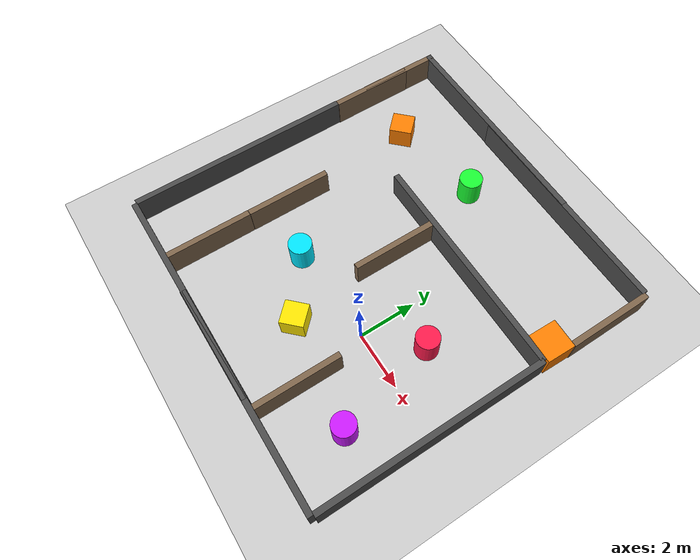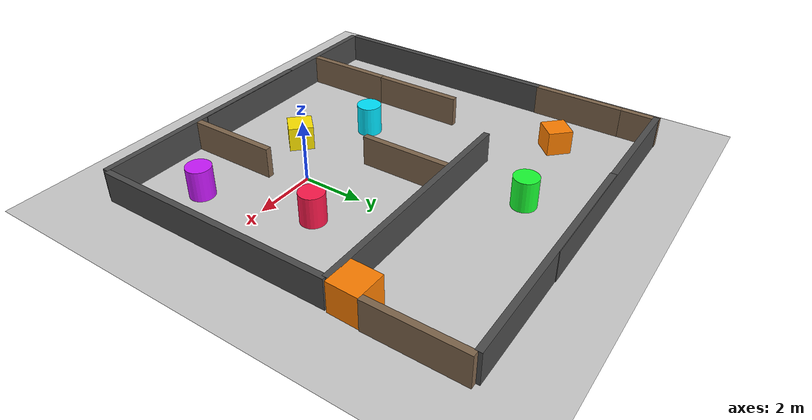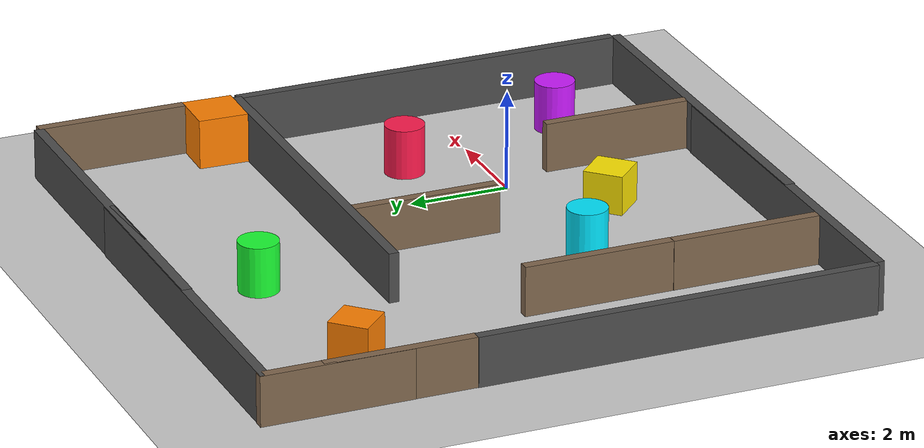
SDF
<sdf version='1.12'>
  <world name='empty'>
    <physics name='1ms' type='ignored'>
      <max_step_size>0.001</max_step_size>
      <real_time_factor>1</real_time_factor>
      <real_time_update_rate>1000</real_time_update_rate>
    </physics>
    <plugin name='gz::sim::systems::Physics' filename='gz-sim-physics-system'/>
    <plugin name='gz::sim::systems::UserCommands' filename='gz-sim-user-commands-system'/>
    <plugin name='gz::sim::systems::SceneBroadcaster' filename='gz-sim-scene-broadcaster-system'/>
    <plugin name='gz::sim::systems::Contact' filename='gz-sim-contact-system'/>
    <plugin name='gz::sim::systems::Sensors' filename='gz-sim-sensors-system'/>
    <gravity>0 0 -9.8000000000000007</gravity>
    <magnetic_field>5.5644999999999998e-06 2.2875799999999999e-05 -4.2388400000000002e-05</magnetic_field>
    <atmosphere type='adiabatic'/>
    <scene>
      <ambient>0.400000006 0.400000006 0.400000006 1</ambient>
      <background>0.699999988 0.699999988 0.699999988 1</background>
      <shadows>true</shadows>
    </scene>
    <model name='ground_plane'>
      <static>true</static>
      <link name='link'>
        <collision name='collision'>
          <geometry>
            <plane>
              <normal>0 0 1</normal>
              <size>100 100</size>
            </plane>
          </geometry>
          <surface>
            <friction>
              <ode/>
            </friction>
            <bounce/>
            <contact/>
          </surface>
        </collision>
        <visual name='visual'>
          <geometry>
            <plane>
              <normal>0 0 1</normal>
              <size>100 100</size>
            </plane>
          </geometry>
          <material>
            <ambient>0.800000012 0.800000012 0.800000012 1</ambient>
            <diffuse>0.800000012 0.800000012 0.800000012 1</diffuse>
            <specular>0.800000012 0.800000012 0.800000012 1</specular>
          </material>
        </visual>
        <pose>0 0 0 0 0 0</pose>
        <inertial>
          <pose>0 0 0 0 0 0</pose>
          <mass>1</mass>
          <inertia>
            <ixx>1</ixx>
            <ixy>0</ixy>
            <ixz>0</ixz>
            <iyy>1</iyy>
            <iyz>0</iyz>
            <izz>1</izz>
          </inertia>
        </inertial>
        <enable_wind>false</enable_wind>
      </link>
      <pose>0 0 0 0 0 0</pose>
      <self_collide>false</self_collide>
    </model>
    <model name='wall_north'>
      <static>true</static>
      <pose>0 4 0.5 0 0 0</pose>
      <link name='link'>
        <collision name='collision'>
          <geometry>
            <box>
              <size>8 0.20000000000000001 1</size>
            </box>
          </geometry>
          <surface>
            <friction>
              <ode/>
            </friction>
            <bounce/>
            <contact/>
          </surface>
        </collision>
        <visual name='visual'>
          <geometry>
            <box>
              <size>8 0.20000000000000001 1</size>
            </box>
          </geometry>
          <material>
            <ambient>0.300000012 0.300000012 0.300000012 1</ambient>
            <diffuse>0.300000012 0.300000012 0.300000012 1</diffuse>
          </material>
        </visual>
        <pose>0 0 0 0 0 0</pose>
        <inertial>
          <pose>0 0 0 0 0 0</pose>
          <mass>1</mass>
          <inertia>
            <ixx>1</ixx>
            <ixy>0</ixy>
            <ixz>0</ixz>
            <iyy>1</iyy>
            <iyz>0</iyz>
            <izz>1</izz>
          </inertia>
        </inertial>
        <enable_wind>false</enable_wind>
      </link>
      <self_collide>false</self_collide>
    </model>
    <model name='wall_south'>
      <static>true</static>
      <pose>0 -4.0923056602478027 0.5 0 0 0</pose>
      <link name='link'>
        <collision name='collision'>
          <geometry>
            <box>
              <size>8 0.20000000000000001 1</size>
            </box>
          </geometry>
          <surface>
            <friction>
              <ode/>
            </friction>
            <bounce/>
            <contact/>
          </surface>
        </collision>
        <visual name='visual'>
          <geometry>
            <box>
              <size>8 0.20000000000000001 1</size>
            </box>
          </geometry>
          <material>
            <ambient>0.300000012 0.300000012 0.300000012 1</ambient>
            <diffuse>0.300000012 0.300000012 0.300000012 1</diffuse>
          </material>
        </visual>
        <pose>0 0 0 0 0 0</pose>
        <inertial>
          <pose>0 0 0 0 0 0</pose>
          <mass>1</mass>
          <inertia>
            <ixx>1</ixx>
            <ixy>0</ixy>
            <ixz>0</ixz>
            <iyy>1</iyy>
            <iyz>0</iyz>
            <izz>1</izz>
          </inertia>
        </inertial>
        <enable_wind>false</enable_wind>
      </link>
      <self_collide>false</self_collide>
    </model>
    <model name='wall_east'>
      <static>true</static>
      <pose>4 0 0.5 0 0 1.5708000000000011</pose>
      <link name='link'>
        <collision name='collision'>
          <geometry>
            <box>
              <size>8 0.20000000000000001 1</size>
            </box>
          </geometry>
          <surface>
            <friction>
              <ode/>
            </friction>
            <bounce/>
            <contact/>
          </surface>
        </collision>
        <visual name='visual'>
          <geometry>
            <box>
              <size>8 0.20000000000000001 1</size>
            </box>
          </geometry>
          <material>
            <ambient>0.300000012 0.300000012 0.300000012 1</ambient>
            <diffuse>0.300000012 0.300000012 0.300000012 1</diffuse>
          </material>
        </visual>
        <pose>0 0 0 0 0 0</pose>
        <inertial>
          <pose>0 0 0 0 0 0</pose>
          <mass>1</mass>
          <inertia>
            <ixx>1</ixx>
            <ixy>0</ixy>
            <ixz>0</ixz>
            <iyy>1</iyy>
            <iyz>0</iyz>
            <izz>1</izz>
          </inertia>
        </inertial>
        <enable_wind>false</enable_wind>
      </link>
      <self_collide>false</self_collide>
    </model>
    <model name='wall_west'>
      <static>true</static>
      <pose>-7.8738789558410645 -1.4367816220328677e-05 0.5 0 0 1.5708000357176291</pose>
      <link name='link'>
        <collision name='collision'>
          <geometry>
            <box>
              <size>8 0.20000000000000001 1</size>
            </box>
          </geometry>
          <surface>
            <friction>
              <ode/>
            </friction>
            <bounce/>
            <contact/>
          </surface>
        </collision>
        <visual name='visual'>
          <geometry>
            <box>
              <size>8 0.20000000000000001 1</size>
            </box>
          </geometry>
          <material>
            <ambient>0.300000012 0.300000012 0.300000012 1</ambient>
            <diffuse>0.300000012 0.300000012 0.300000012 1</diffuse>
          </material>
        </visual>
        <pose>0 0 0 0 0 0</pose>
        <inertial>
          <pose>0 0 0 0 0 0</pose>
          <mass>1</mass>
          <inertia>
            <ixx>1</ixx>
            <ixy>0</ixy>
            <ixz>0</ixz>
            <iyy>1</iyy>
            <iyz>0</iyz>
            <izz>1</izz>
          </inertia>
        </inertial>
        <enable_wind>false</enable_wind>
      </link>
      <self_collide>false</self_collide>
    </model>
    <model name='pillar_1'>
      <static>true</static>
      <pose>1.5 1.5 0.5 0 0 0</pose>
      <link name='link'>
        <collision name='collision'>
          <geometry>
            <cylinder>
              <radius>0.40000000000000002</radius>
              <length>1</length>
            </cylinder>
          </geometry>
          <surface>
            <friction>
              <ode/>
            </friction>
            <bounce/>
            <contact/>
          </surface>
        </collision>
        <visual name='visual'>
          <geometry>
            <cylinder>
              <radius>0.40000000000000002</radius>
              <length>1</length>
            </cylinder>
          </geometry>
          <material>
            <ambient>1.0 0.1 0.3 1</ambient>
            <diffuse>1.0 0.1 0.3 1</diffuse>
          </material>
        </visual>
        <pose>0 0 0 0 0 0</pose>
        <inertial>
          <pose>0 0 0 0 0 0</pose>
          <mass>1</mass>
          <inertia>
            <ixx>1</ixx>
            <ixy>0</ixy>
            <ixz>0</ixz>
            <iyy>1</iyy>
            <iyz>0</iyz>
            <izz>1</izz>
          </inertia>
        </inertial>
        <enable_wind>false</enable_wind>
      </link>
      <self_collide>false</self_collide>
    </model>
    <model name='box_2'>
      <static>true</static>
      <pose>-1.5 -1.5 0.40000000000000002 0 0 0.7854000000000001</pose>
      <link name='link'>
        <collision name='collision'>
          <geometry>
            <box>
              <size>0.80000000000000004 0.80000000000000004 0.80000000000000004</size>
            </box>
          </geometry>
          <surface>
            <friction>
              <ode/>
            </friction>
            <bounce/>
            <contact/>
          </surface>
        </collision>
        <visual name='visual'>
          <geometry>
            <box>
              <size>0.80000000000000004 0.80000000000000004 0.80000000000000004</size>
            </box>
          </geometry>
          <material>
            <ambient>1.0 0.9 0.0 1</ambient>
            <diffuse>1.0 0.9 0.0 1</diffuse>
          </material>
        </visual>
        <pose>0 0 0 0 0 0</pose>
        <inertial>
          <pose>0 0 0 0 0 0</pose>
          <mass>1</mass>
          <inertia>
            <ixx>1</ixx>
            <ixy>0</ixy>
            <ixz>0</ixz>
            <iyy>1</iyy>
            <iyz>0</iyz>
            <izz>1</izz>
          </inertia>
        </inertial>
        <enable_wind>false</enable_wind>
      </link>
      <self_collide>false</self_collide>
    </model>
    <model name='partition_wall'>
      <static>true</static>
      <pose>0.5 -2.5134696960449219 0.5 0 0 0</pose>
      <link name='link'>
        <collision name='collision'>
          <geometry>
            <box>
              <size>0.20000000000000001 3 1</size>
            </box>
          </geometry>
          <surface>
            <friction>
              <ode/>
            </friction>
            <bounce/>
            <contact/>
          </surface>
        </collision>
        <visual name='visual'>
          <geometry>
            <box>
              <size>0.20000000000000001 3 1</size>
            </box>
          </geometry>
          <material>
            <ambient>0.5 0.400000006 0.300000012 1</ambient>
            <diffuse>0.5 0.400000006 0.300000012 1</diffuse>
          </material>
        </visual>
        <pose>0 0 0 0 0 0</pose>
        <inertial>
          <pose>0 0 0 0 0 0</pose>
          <mass>1</mass>
          <inertia>
            <ixx>1</ixx>
            <ixy>0</ixy>
            <ixz>0</ixz>
            <iyy>1</iyy>
            <iyz>0</iyz>
            <izz>1</izz>
          </inertia>
        </inertial>
        <enable_wind>false</enable_wind>
      </link>
      <self_collide>false</self_collide>
    </model>
    <model name='wall_south_1'>
      <static>true</static>
      <pose>-3.8410096357541637 -4.0713960414639923 0.5 0 0 0</pose>
      <link name='link'>
        <collision name='collision'>
          <geometry>
            <box>
              <size>8 0.20000000000000001 1</size>
            </box>
          </geometry>
          <surface>
            <friction>
              <ode/>
            </friction>
            <bounce/>
            <contact/>
          </surface>
        </collision>
        <visual name='visual'>
          <geometry>
            <box>
              <size>8 0.20000000000000001 1</size>
            </box>
          </geometry>
          <material>
            <ambient>0.300000012 0.300000012 0.300000012 1</ambient>
            <diffuse>0.300000012 0.300000012 0.300000012 1</diffuse>
          </material>
        </visual>
        <pose>0 0 0 0 0 0</pose>
        <inertial>
          <pose>0 0 0 0 0 0</pose>
          <mass>1</mass>
          <inertia>
            <ixx>1</ixx>
            <ixy>0</ixy>
            <ixz>0</ixz>
            <iyy>1</iyy>
            <iyz>0</iyz>
            <izz>1</izz>
          </inertia>
        </inertial>
        <enable_wind>false</enable_wind>
      </link>
      <self_collide>false</self_collide>
    </model>
    <model name='partition_wall_1'>
      <static>true</static>
      <pose>-1.7605017748249381 2.4458552626237258 0.5 0 0 0</pose>
      <link name='link'>
        <collision name='collision'>
          <geometry>
            <box>
              <size>0.20000000000000001 3 1</size>
            </box>
          </geometry>
          <surface>
            <friction>
              <ode/>
            </friction>
            <bounce/>
            <contact/>
          </surface>
        </collision>
        <visual name='visual'>
          <geometry>
            <box>
              <size>0.20000000000000001 3 1</size>
            </box>
          </geometry>
          <material>
            <ambient>0.5 0.400000006 0.300000012 1</ambient>
            <diffuse>0.5 0.400000006 0.300000012 1</diffuse>
          </material>
        </visual>
        <pose>0 0 0 0 0 0</pose>
        <inertial>
          <pose>0 0 0 0 0 0</pose>
          <mass>1</mass>
          <inertia>
            <ixx>1</ixx>
            <ixy>0</ixy>
            <ixz>0</ixz>
            <iyy>1</iyy>
            <iyz>0</iyz>
            <izz>1</izz>
          </inertia>
        </inertial>
        <enable_wind>false</enable_wind>
      </link>
      <self_collide>false</self_collide>
    </model>
    <model name='partition_wall_2'>
      <static>true</static>
      <pose>-5.4336396356057675 -2.4803187721044377 0.5 0 0 0</pose>
      <link name='link'>
        <collision name='collision'>
          <geometry>
            <box>
              <size>0.20000000000000001 3 1</size>
            </box>
          </geometry>
          <surface>
            <friction>
              <ode/>
            </friction>
            <bounce/>
            <contact/>
          </surface>
        </collision>
        <visual name='visual'>
          <geometry>
            <box>
              <size>0.20000000000000001 3 1</size>
            </box>
          </geometry>
          <material>
            <ambient>0.5 0.400000006 0.300000012 1</ambient>
            <diffuse>0.5 0.400000006 0.300000012 1</diffuse>
          </material>
        </visual>
        <pose>0 0 0 0 0 0</pose>
        <inertial>
          <pose>0 0 0 0 0 0</pose>
          <mass>1</mass>
          <inertia>
            <ixx>1</ixx>
            <ixy>0</ixy>
            <ixz>0</ixz>
            <iyy>1</iyy>
            <iyz>0</iyz>
            <izz>1</izz>
          </inertia>
        </inertial>
        <enable_wind>false</enable_wind>
      </link>
      <self_collide>false</self_collide>
    </model>
    <model name='partition_wall_3'>
      <static>true</static>
      <pose>-5.4298612976178502 0.52239225409413659 0.5 0 0 0</pose>
      <link name='link'>
        <collision name='collision'>
          <geometry>
            <box>
              <size>0.20000000000000001 3 1</size>
            </box>
          </geometry>
          <surface>
            <friction>
              <ode/>
            </friction>
            <bounce/>
            <contact/>
          </surface>
        </collision>
        <visual name='visual'>
          <geometry>
            <box>
              <size>0.20000000000000001 3 1</size>
            </box>
          </geometry>
          <material>
            <ambient>0.5 0.400000006 0.300000012 1</ambient>
            <diffuse>0.5 0.400000006 0.300000012 1</diffuse>
          </material>
        </visual>
        <pose>0 0 0 0 0 0</pose>
        <inertial>
          <pose>0 0 0 0 0 0</pose>
          <mass>1</mass>
          <inertia>
            <ixx>1</ixx>
            <ixy>0</ixy>
            <ixz>0</ixz>
            <iyy>1</iyy>
            <iyz>0</iyz>
            <izz>1</izz>
          </inertia>
        </inertial>
        <enable_wind>false</enable_wind>
      </link>
      <self_collide>false</self_collide>
    </model>
    <model name='wall_north_1'>
      <static>true</static>
      <pose>-0.0087421660810775847 8.0810803933114244 0.5 0 0 0</pose>
      <link name='link'>
        <collision name='collision'>
          <geometry>
            <box>
              <size>8 0.20000000000000001 1</size>
            </box>
          </geometry>
          <surface>
            <friction>
              <ode/>
            </friction>
            <bounce/>
            <contact/>
          </surface>
        </collision>
        <visual name='visual'>
          <geometry>
            <box>
              <size>8 0.20000000000000001 1</size>
            </box>
          </geometry>
          <material>
            <ambient>0.300000012 0.300000012 0.300000012 1</ambient>
            <diffuse>0.300000012 0.300000012 0.300000012 1</diffuse>
          </material>
        </visual>
        <pose>0 0 0 0 0 0</pose>
        <inertial>
          <pose>0 0 0 0 0 0</pose>
          <mass>1</mass>
          <inertia>
            <ixx>1</ixx>
            <ixy>0</ixy>
            <ixz>0</ixz>
            <iyy>1</iyy>
            <iyz>0</iyz>
            <izz>1</izz>
          </inertia>
        </inertial>
        <enable_wind>false</enable_wind>
      </link>
      <self_collide>false</self_collide>
    </model>
    <model name='partition_wall_1_1'>
      <static>true</static>
      <pose>4.0727912901677215 6.5709294826177809 0.5 0 0 0</pose>
      <link name='link'>
        <collision name='collision'>
          <geometry>
            <box>
              <size>0.20000000000000001 3 1</size>
            </box>
          </geometry>
          <surface>
            <friction>
              <ode/>
            </friction>
            <bounce/>
            <contact/>
          </surface>
        </collision>
        <visual name='visual'>
          <geometry>
            <box>
              <size>0.20000000000000001 3 1</size>
            </box>
          </geometry>
          <material>
            <ambient>0.5 0.400000006 0.300000012 1</ambient>
            <diffuse>0.5 0.400000006 0.300000012 1</diffuse>
          </material>
        </visual>
        <pose>0 0 0 0 0 0</pose>
        <inertial>
          <pose>0 0 0 0 0 0</pose>
          <mass>1</mass>
          <inertia>
            <ixx>1</ixx>
            <ixy>0</ixy>
            <ixz>0</ixz>
            <iyy>1</iyy>
            <iyz>0</iyz>
            <izz>1</izz>
          </inertia>
        </inertial>
        <enable_wind>false</enable_wind>
      </link>
      <self_collide>false</self_collide>
    </model>
    <model name='box'>
      <pose>3.6385887950290052 4.5855742742350225 0.50000251071018231 8.3012335144042598e-08 -5.02219154466215e-06 -0.028869966884011698</pose>
      <link name='box_link'>
        <inertial>
          <inertia>
            <ixx>0.16666</ixx>
            <ixy>0</ixy>
            <ixz>0</ixz>
            <iyy>0.16666</iyy>
            <iyz>0</iyz>
            <izz>0.16666</izz>
          </inertia>
          <mass>1</mass>
          <pose>0 0 0 0 0 0</pose>
        </inertial>
        <collision name='box_collision'>
          <geometry>
            <box>
              <size>1 1 1</size>
            </box>
          </geometry>
          <surface>
            <friction>
              <ode/>
            </friction>
            <bounce/>
            <contact/>
          </surface>
        </collision>
        <visual name='box_visual'>
          <geometry>
            <box>
              <size>1 1 1</size>
            </box>
          </geometry>
          <material>
            <ambient>1.0 0.4 0.0 1</ambient>
            <diffuse>1.0 0.5 0.0 1</diffuse>
            <specular>0.8 0.8 0.8 1</specular>
          </material>
        </visual>
        <pose>0 0 0 0 0 0</pose>
        <enable_wind>false</enable_wind>
      </link>
      <static>false</static>
      <self_collide>false</self_collide>
    </model>
    <model name='box_2_1'>
      <static>true</static>
      <pose>-5.9091497818468603 5.5349610578667976 0.40000000596046448 0 0 0.78540004313744605</pose>
      <link name='link'>
        <collision name='collision'>
          <geometry>
            <box>
              <size>0.80000000000000004 0.80000000000000004 0.80000000000000004</size>
            </box>
          </geometry>
          <surface>
            <friction>
              <ode/>
            </friction>
            <bounce/>
            <contact/>
          </surface>
        </collision>
        <visual name='visual'>
          <geometry>
            <box>
              <size>0.80000000000000004 0.80000000000000004 0.80000000000000004</size>
            </box>
          </geometry>
          <material>
            <ambient>1.0 0.4 0.0 1</ambient>
            <diffuse>1.0 0.5 0.0 1</diffuse>
          </material>
        </visual>
        <pose>0 0 0 0 0 0</pose>
        <inertial>
          <pose>0 0 0 0 0 0</pose>
          <mass>1</mass>
          <inertia>
            <ixx>1</ixx>
            <ixy>0</ixy>
            <ixz>0</ixz>
            <iyy>1</iyy>
            <iyz>0</iyz>
            <izz>1</izz>
          </inertia>
        </inertial>
        <enable_wind>false</enable_wind>
      </link>
      <self_collide>false</self_collide>
    </model>
    <model name='pillar_1_1'>
      <static>true</static>
      <pose>-3.4697230367513896 -0.14226259319726964 0.5 0 0 0</pose>
      <link name='link'>
        <collision name='collision'>
          <geometry>
            <cylinder>
              <radius>0.40000000000000002</radius>
              <length>1</length>
            </cylinder>
          </geometry>
          <surface>
            <friction>
              <ode/>
            </friction>
            <bounce/>
            <contact/>
          </surface>
        </collision>
        <visual name='visual'>
          <geometry>
            <cylinder>
              <radius>0.40000000000000002</radius>
              <length>1</length>
            </cylinder>
          </geometry>
          <material>
            <ambient>0.0 0.8 1.0 1</ambient>
            <diffuse>0.0 0.9 1.0 1</diffuse>
          </material>
        </visual>
        <pose>0 0 0 0 0 0</pose>
        <inertial>
          <pose>0 0 0 0 0 0</pose>
          <mass>1</mass>
          <inertia>
            <ixx>1</ixx>
            <ixy>0</ixy>
            <ixz>0</ixz>
            <iyy>1</iyy>
            <iyz>0</iyz>
            <izz>1</izz>
          </inertia>
        </inertial>
        <enable_wind>false</enable_wind>
      </link>
      <self_collide>false</self_collide>
    </model>
    <model name='pillar_1_2'>
      <static>true</static>
      <pose>2.3552812401042456 -2.0403482321892001 0.5 0 0 0</pose>
      <link name='link'>
        <collision name='collision'>
          <geometry>
            <cylinder>
              <radius>0.40000000000000002</radius>
              <length>1</length>
            </cylinder>
          </geometry>
          <surface>
            <friction>
              <ode/>
            </friction>
            <bounce/>
            <contact/>
          </surface>
        </collision>
        <visual name='visual'>
          <geometry>
            <cylinder>
              <radius>0.40000000000000002</radius>
              <length>1</length>
            </cylinder>
          </geometry>
          <material>
            <ambient>0.7 0.1 1.0 1</ambient>
            <diffuse>0.8 0.1 1.0 1</diffuse>
          </material>
        </visual>
        <pose>0 0 0 0 0 0</pose>
        <inertial>
          <pose>0 0 0 0 0 0</pose>
          <mass>1</mass>
          <inertia>
            <ixx>1</ixx>
            <ixy>0</ixy>
            <ixz>0</ixz>
            <iyy>1</iyy>
            <iyz>0</iyz>
            <izz>1</izz>
          </inertia>
        </inertial>
        <enable_wind>false</enable_wind>
      </link>
      <self_collide>false</self_collide>
    </model>
    <model name='pillar_1_3'>
      <static>true</static>
      <pose>-2.4846503666738551 6.0894078433106724 0.5 0 0 0</pose>
      <link name='link'>
        <collision name='collision'>
          <geometry>
            <cylinder>
              <radius>0.40000000000000002</radius>
              <length>1</length>
            </cylinder>
          </geometry>
          <surface>
            <friction>
              <ode/>
            </friction>
            <bounce/>
            <contact/>
          </surface>
        </collision>
        <visual name='visual'>
          <geometry>
            <cylinder>
              <radius>0.40000000000000002</radius>
              <length>1</length>
            </cylinder>
          </geometry>
          <material>
            <ambient>0.1 1.0 0.2 1</ambient>
            <diffuse>0.1 1.0 0.2 1</diffuse>
          </material>
        </visual>
        <pose>0 0 0 0 0 0</pose>
        <inertial>
          <pose>0 0 0 0 0 0</pose>
          <mass>1</mass>
          <inertia>
            <ixx>1</ixx>
            <ixy>0</ixy>
            <ixz>0</ixz>
            <iyy>1</iyy>
            <iyz>0</iyz>
            <izz>1</izz>
          </inertia>
        </inertial>
        <enable_wind>false</enable_wind>
      </link>
      <self_collide>false</self_collide>
    </model>
    <model name='wall_north_1_1'>
      <static>true</static>
      <pose>-3.9489494225934276 8.0993849353862419 0.5 0 0 0</pose>
      <link name='link'>
        <collision name='collision'>
          <geometry>
            <box>
              <size>8 0.20000000000000001 1</size>
            </box>
          </geometry>
          <surface>
            <friction>
              <ode/>
            </friction>
            <bounce/>
            <contact/>
          </surface>
        </collision>
        <visual name='visual'>
          <geometry>
            <box>
              <size>8 0.20000000000000001 1</size>
            </box>
          </geometry>
          <material>
            <ambient>0.300000012 0.300000012 0.300000012 1</ambient>
            <diffuse>0.300000012 0.300000012 0.300000012 1</diffuse>
          </material>
        </visual>
        <pose>0 0 0 0 0 0</pose>
        <inertial>
          <pose>0 0 0 0 0 0</pose>
          <mass>1</mass>
          <inertia>
            <ixx>1</ixx>
            <ixy>0</ixy>
            <ixz>0</ixz>
            <iyy>1</iyy>
            <iyz>0</iyz>
            <izz>1</izz>
          </inertia>
        </inertial>
        <enable_wind>false</enable_wind>
      </link>
      <self_collide>false</self_collide>
    </model>
    <model name='partition_wall_1_2'>
      <static>true</static>
      <pose>-7.8597061718532277 5.4637515614569221 0.5 0 0 0</pose>
      <link name='link'>
        <collision name='collision'>
          <geometry>
            <box>
              <size>0.20000000000000001 3 1</size>
            </box>
          </geometry>
          <surface>
            <friction>
              <ode/>
            </friction>
            <bounce/>
            <contact/>
          </surface>
        </collision>
        <visual name='visual'>
          <geometry>
            <box>
              <size>0.20000000000000001 3 1</size>
            </box>
          </geometry>
          <material>
            <ambient>0.5 0.400000006 0.300000012 1</ambient>
            <diffuse>0.5 0.400000006 0.300000012 1</diffuse>
          </material>
        </visual>
        <pose>0 0 0 0 0 0</pose>
        <inertial>
          <pose>0 0 0 0 0 0</pose>
          <mass>1</mass>
          <inertia>
            <ixx>1</ixx>
            <ixy>0</ixy>
            <ixz>0</ixz>
            <iyy>1</iyy>
            <iyz>0</iyz>
            <izz>1</izz>
          </inertia>
        </inertial>
        <enable_wind>false</enable_wind>
      </link>
      <self_collide>false</self_collide>
    </model>
    <model name='partition_wall_1_3'>
      <static>true</static>
      <pose>-7.8659088222401223 6.7102887912161133 0.5 0 0 0</pose>
      <link name='link'>
        <collision name='collision'>
          <geometry>
            <box>
              <size>0.20000000000000001 3 1</size>
            </box>
          </geometry>
          <surface>
            <friction>
              <ode/>
            </friction>
            <bounce/>
            <contact/>
          </surface>
        </collision>
        <visual name='visual'>
          <geometry>
            <box>
              <size>0.20000000000000001 3 1</size>
            </box>
          </geometry>
          <material>
            <ambient>0.5 0.400000006 0.300000012 1</ambient>
            <diffuse>0.5 0.400000006 0.300000012 1</diffuse>
          </material>
        </visual>
        <pose>0 0 0 0 0 0</pose>
        <inertial>
          <pose>0 0 0 0 0 0</pose>
          <mass>1</mass>
          <inertia>
            <ixx>1</ixx>
            <ixy>0</ixy>
            <ixz>0</ixz>
            <iyy>1</iyy>
            <iyz>0</iyz>
            <izz>1</izz>
          </inertia>
        </inertial>
        <enable_wind>false</enable_wind>
      </link>
      <self_collide>false</self_collide>
    </model>
    <light name='sun' type='directional'>
      <pose>0 0 10 0 0 0</pose>
      <cast_shadows>true</cast_shadows>
      <intensity>1</intensity>
      <direction>-0.5 0.10000000000000001 -0.90000000000000002</direction>
      <diffuse>0.800000012 0.800000012 0.800000012 1</diffuse>
      <specular>0.200000003 0.200000003 0.200000003 1</specular>
      <attenuation>
        <range>1000</range>
        <linear>0.01</linear>
        <constant>0.90000000000000002</constant>
        <quadratic>0.001</quadratic>
      </attenuation>
      <spot>
        <inner_angle>0</inner_angle>
        <outer_angle>0</outer_angle>
        <falloff>0</falloff>
      </spot>
    </light>
  </world>
</sdf>
